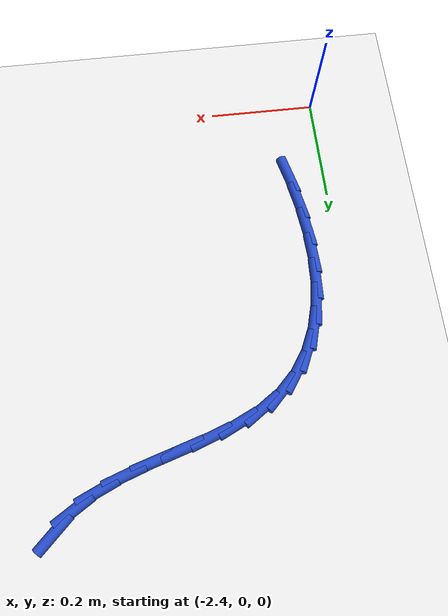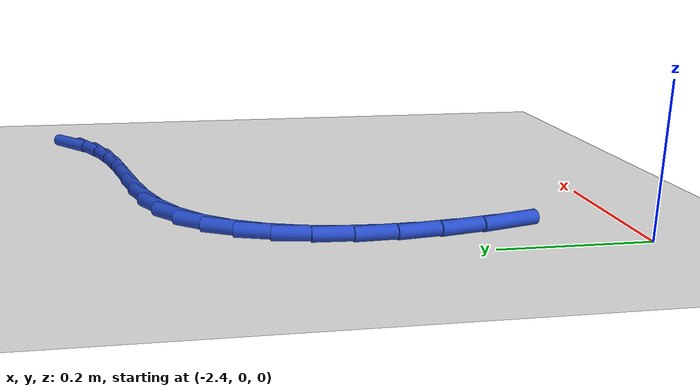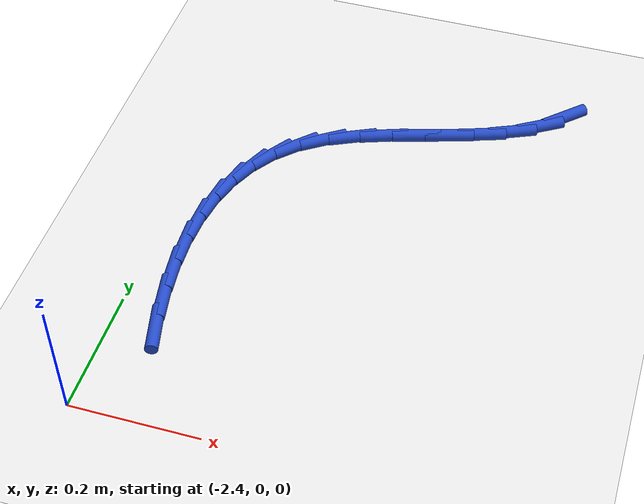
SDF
<sdf version="1.6">
 <world name="default">
  <model name="ground_plane">
   <static>1</static>
   <link name="link">
    <collision name="collision">
     <geometry><plane><normal>0 0 1</normal><size>100 100</size></plane></geometry>
     <surface><friction><ode><mu>100</mu><mu2>50</mu2></ode></friction></surface>
    </collision>
    <visual name="visual">
     <cast_shadows>0</cast_shadows>
     <geometry><plane><normal>0 0 1</normal><size>100 100</size></plane></geometry>
     <material>
      <script><uri>file://media/materials/scripts/gazebo.material</uri><name>Gazebo/WhiteGlow</name></script>
     </material>
    </visual>
   </link>
  </model>
  <model name="line">
   <link name="link_59">
    <pose>-1.8459039258264307 0.769578397127815 0.01 0 1.57 0.7646317456555336</pose>
    <collision name="collision">
     <geometry><cylinder><radius>0.01</radius><length>0.08</length></cylinder></geometry>
    </collision>
    <visual name="visual">
     <material>
      <script><name>Gazebo/Blue</name><uri>file://media/materials/scripts/gazebo.material</uri></script>
     </material>
     <geometry><cylinder><radius>0.01</radius><length>0.08</length></cylinder></geometry>
    </visual>
   </link>
   <link name="link_60">
    <pose>-1.8800940084416848 0.7367796328952851 0.01 0 1.57 0.5595015557187593</pose>
    <collision name="collision">
     <geometry><cylinder><radius>0.01</radius><length>0.08</length></cylinder></geometry>
    </collision>
    <visual name="visual">
     <material>
      <script><name>Gazebo/Blue</name><uri>file://media/materials/scripts/gazebo.material</uri></script>
     </material>
     <geometry><cylinder><radius>0.01</radius><length>0.08</length></cylinder></geometry>
    </visual>
   </link>
   <link name="link_61">
    <pose>-1.9216100688767817 0.7107799764308866 0.01 0 1.57 0.41899233665328234</pose>
    <collision name="collision">
     <geometry><cylinder><radius>0.01</radius><length>0.08</length></cylinder></geometry>
    </collision>
    <visual name="visual">
     <material>
      <script><name>Gazebo/Blue</name><uri>file://media/materials/scripts/gazebo.material</uri></script>
     </material>
     <geometry><cylinder><radius>0.01</radius><length>0.08</length></cylinder></geometry>
    </visual>
   </link>
   <link name="link_62">
    <pose>-1.9685120468771962 0.6898915018174295 0.01 0 1.57 0.33440838203354933</pose>
    <collision name="collision">
     <geometry><cylinder><radius>0.01</radius><length>0.08</length></cylinder></geometry>
    </collision>
    <visual name="visual">
     <material>
      <script><name>Gazebo/Blue</name><uri>file://media/materials/scripts/gazebo.material</uri></script>
     </material>
     <geometry><cylinder><radius>0.01</radius><length>0.08</length></cylinder></geometry>
    </visual>
   </link>
   <link name="link_63">
    <pose>-2.018836738522389 0.6724057883175673 0.01 0 1.57 0.2959879984718707</pose>
    <collision name="collision">
     <geometry><cylinder><radius>0.01</radius><length>0.08</length></cylinder></geometry>
    </collision>
    <visual name="visual">
     <material>
      <script><name>Gazebo/Blue</name><uri>file://media/materials/scripts/gazebo.material</uri></script>
     </material>
     <geometry><cylinder><radius>0.01</radius><length>0.08</length></cylinder></geometry>
    </visual>
   </link>
   <link name="link_64">
    <pose>-2.0706209398918247 0.6566144151939529 0.01 0 1.57 0.29897691717742214</pose>
    <collision name="collision">
     <geometry><cylinder><radius>0.01</radius><length>0.08</length></cylinder></geometry>
    </collision>
    <visual name="visual">
     <material>
      <script><name>Gazebo/Blue</name><uri>file://media/materials/scripts/gazebo.material</uri></script>
     </material>
     <geometry><cylinder><radius>0.01</radius><length>0.08</length></cylinder></geometry>
    </visual>
   </link>
   <link name="link_65">
    <pose>-2.121901447064964 0.6408089617092402 0.01 0 1.57 0.34474023818986305</pose>
    <collision name="collision">
     <geometry><cylinder><radius>0.01</radius><length>0.08</length></cylinder></geometry>
    </collision>
    <visual name="visual">
     <material>
      <script><name>Gazebo/Blue</name><uri>file://media/materials/scripts/gazebo.material</uri></script>
     </material>
     <geometry><cylinder><radius>0.01</radius><length>0.08</length></cylinder></geometry>
    </visual>
   </link>
   <link name="link_66">
    <pose>-2.170715056121269 0.6232810071260817 0.01 0 1.57 0.44117944549381877</pose>
    <collision name="collision">
     <geometry><cylinder><radius>0.01</radius><length>0.08</length></cylinder></geometry>
    </collision>
    <visual name="visual">
     <material>
      <script><name>Gazebo/Blue</name><uri>file://media/materials/scripts/gazebo.material</uri></script>
     </material>
     <geometry><cylinder><radius>0.01</radius><length>0.08</length></cylinder></geometry>
    </visual>
   </link>
   <link name="link_67">
    <pose>-2.215098563140205 0.6023221307071311 0.01 0 1.57 0.5991140425973632</pose>
    <collision name="collision">
     <geometry><cylinder><radius>0.01</radius><length>0.08</length></cylinder></geometry>
    </collision>
    <visual name="visual">
     <material>
      <script><name>Gazebo/Blue</name><uri>file://media/materials/scripts/gazebo.material</uri></script>
     </material>
     <geometry><cylinder><radius>0.01</radius><length>0.08</length></cylinder></geometry>
    </visual>
   </link>
   <link name="link_68">
    <pose>-2.2531852712303357 0.5763151182761957 0.01 0 1.57 0.7891544901374089</pose>
    <collision name="collision">
     <geometry><cylinder><radius>0.01</radius><length>0.08</length></cylinder></geometry>
    </collision>
    <visual name="visual">
     <material>
      <script><name>Gazebo/Blue</name><uri>file://media/materials/scripts/gazebo.material</uri></script>
     </material>
     <geometry><cylinder><radius>0.01</radius><length>0.08</length></cylinder></geometry>
    </visual>
   </link>
   <link name="link_69">
    <pose>-2.2844008505114166 0.5448641418289798 0.01 0 1.57 0.9749748053602884</pose>
    <collision name="collision">
     <geometry><cylinder><radius>0.01</radius><length>0.08</length></cylinder></geometry>
    </collision>
    <visual name="visual">
     <material>
      <script><name>Gazebo/Blue</name><uri>file://media/materials/scripts/gazebo.material</uri></script>
     </material>
     <geometry><cylinder><radius>0.01</radius><length>0.08</length></cylinder></geometry>
    </visual>
   </link>
   <link name="link_70">
    <pose>-2.309093561520341 0.5084452922263919 0.01 0 1.57 1.1451659990528074</pose>
    <collision name="collision">
     <geometry><cylinder><radius>0.01</radius><length>0.08</length></cylinder></geometry>
    </collision>
    <visual name="visual">
     <material>
      <script><name>Gazebo/Blue</name><uri>file://media/materials/scripts/gazebo.material</uri></script>
     </material>
     <geometry><cylinder><radius>0.01</radius><length>0.08</length></cylinder></geometry>
    </visual>
   </link>
   <link name="link_71">
    <pose>-2.3276315727988393 0.4675534749242701 0.01 0 1.57 1.2939083558724913</pose>
    <collision name="collision">
     <geometry><cylinder><radius>0.01</radius><length>0.08</length></cylinder></geometry>
    </collision>
    <visual name="visual">
     <material>
      <script><name>Gazebo/Blue</name><uri>file://media/materials/scripts/gazebo.material</uri></script>
     </material>
     <geometry><cylinder><radius>0.01</radius><length>0.08</length></cylinder></geometry>
    </visual>
   </link>
   <link name="link_72">
    <pose>-2.3403830528886425 0.42268359537845446 0.01 0 1.57 1.4202854074309041</pose>
    <collision name="collision">
     <geometry><cylinder><radius>0.01</radius><length>0.08</length></cylinder></geometry>
    </collision>
    <visual name="visual">
     <material>
      <script><name>Gazebo/Blue</name><uri>file://media/materials/scripts/gazebo.material</uri></script>
     </material>
     <geometry><cylinder><radius>0.01</radius><length>0.08</length></cylinder></geometry>
    </visual>
   </link>
   <link name="link_73">
    <pose>-2.347716170331481 0.3743305590447833 0.01 0 1.57 1.5263599554041218</pose>
    <collision name="collision">
     <geometry><cylinder><radius>0.01</radius><length>0.08</length></cylinder></geometry>
    </collision>
    <visual name="visual">
     <material>
      <script><name>Gazebo/Blue</name><uri>file://media/materials/scripts/gazebo.material</uri></script>
     </material>
     <geometry><cylinder><radius>0.01</radius><length>0.08</length></cylinder></geometry>
    </visual>
   </link>
   <link name="link_74">
    <pose>-2.3499990936690844 0.32298927137909567 0.01 0 1.57 -1.526261502807037</pose>
    <collision name="collision">
     <geometry><cylinder><radius>0.01</radius><length>0.08</length></cylinder></geometry>
    </collision>
    <visual name="visual">
     <material>
      <script><name>Gazebo/Blue</name><uri>file://media/materials/scripts/gazebo.material</uri></script>
     </material>
     <geometry><cylinder><radius>0.01</radius><length>0.08</length></cylinder></geometry>
    </visual>
   </link>
   <link name="link_75">
    <pose>-2.3475999914431847 0.26915463783723054 0.01 0 1.57 -1.4511380454373817</pose>
    <collision name="collision">
     <geometry><cylinder><radius>0.01</radius><length>0.08</length></cylinder></geometry>
    </collision>
    <visual name="visual">
     <material>
      <script><name>Gazebo/Blue</name><uri>file://media/materials/scripts/gazebo.material</uri></script>
     </material>
     <geometry><cylinder><radius>0.01</radius><length>0.08</length></cylinder></geometry>
    </visual>
   </link>
   <link name="link_76">
    <pose>-2.340887032195511 0.2133215638750264 0.01 0 1.57 -1.3869983255489953</pose>
    <collision name="collision">
     <geometry><cylinder><radius>0.01</radius><length>0.08</length></cylinder></geometry>
    </collision>
    <visual name="visual">
     <material>
      <script><name>Gazebo/Blue</name><uri>file://media/materials/scripts/gazebo.material</uri></script>
     </material>
     <geometry><cylinder><radius>0.01</radius><length>0.08</length></cylinder></geometry>
    </visual>
   </link>
   <link name="link_77">
    <pose>-2.330228384467795 0.15598495494832257 0.01 0 1.57 -1.3314737864261392</pose>
    <collision name="collision">
     <geometry><cylinder><radius>0.01</radius><length>0.08</length></cylinder></geometry>
    </collision>
    <visual name="visual">
     <material>
      <script><name>Gazebo/Blue</name><uri>file://media/materials/scripts/gazebo.material</uri></script>
     </material>
     <geometry><cylinder><radius>0.01</radius><length>0.08</length></cylinder></geometry>
    </visual>
   </link>
  </model>
 </world>
</sdf>
